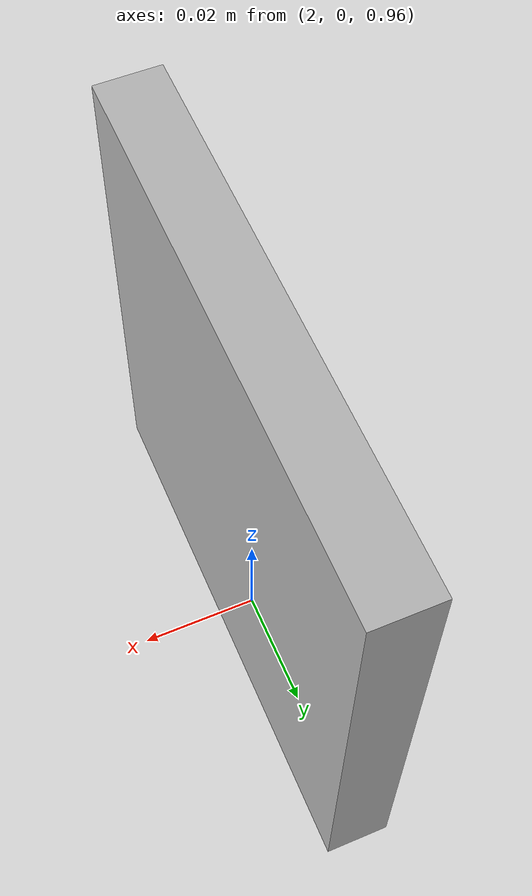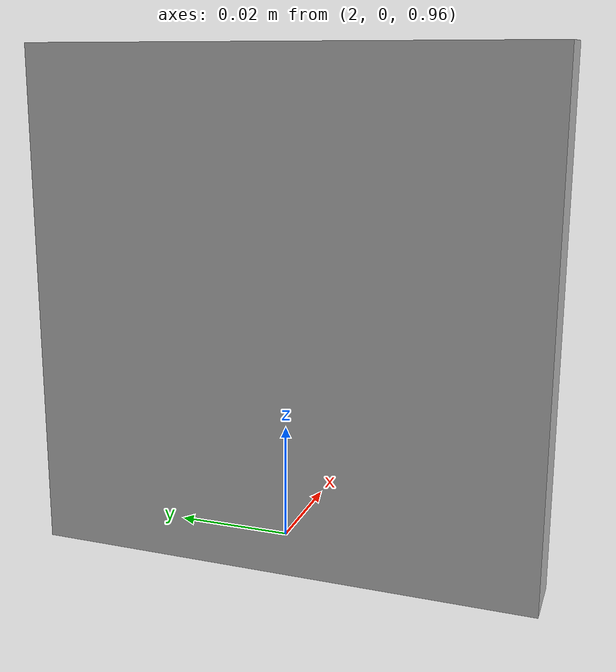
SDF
<sdf version="1.6">
 <world name="default">
  <light name="sun" type="directional">
   <pose>0 0 10 0 -0 0</pose>
   <diffuse>0.8 0.8 0.8 1</diffuse>
   <specular>0.2 0.2 0.2 1</specular>
   <attenuation>
    <range>1000</range>
    <constant>0.9</constant>
    <linear>0.01</linear>
    <quadratic>0.001</quadratic>
   </attenuation>
   <direction>-0.5 0.1 -0.9</direction>
  </light>
  <model name="ground_plane">
   <static>1</static>
   <link name="link">
    <collision name="collision">
     <geometry><plane><normal>0 0 1</normal><size>100 100</size></plane></geometry>
     <surface>
      <contact><collide_bitmask>65535</collide_bitmask></contact>
      <friction><ode><mu>100</mu><mu2>50</mu2></ode></friction>
     </surface>
    </collision>
    <visual name="visual">
     <cast_shadows>0</cast_shadows>
     <geometry><plane><normal>0 0 1</normal><size>100 100</size></plane></geometry>
     <material>
      <script><uri>file://media/materials/scripts/gazebo.material</uri><name>Gazebo/Grey</name></script>
     </material>
    </visual>
   </link>
  </model>
  <gravity>0 0 -9.8</gravity>
  <magnetic_field>6e-06 2.3e-05 -4.2e-05</magnetic_field>
  <atmosphere type="adiabatic"/>
  <physics name="default_physics" default="0" type="ode">
   <max_step_size>0.001</max_step_size>
   <real_time_factor>1</real_time_factor>
   <real_time_update_rate>1000</real_time_update_rate>
  </physics>
  <scene><ambient>0.4 0.4 0.4 1</ambient><background>0.7 0.7 0.7 1</background><shadows>1</shadows></scene>
  <spherical_coordinates>
   <surface_model>EARTH_WGS84</surface_model>
   <latitude_deg>0</latitude_deg>
   <longitude_deg>0</longitude_deg>
   <elevation>0</elevation>
   <heading_deg>0</heading_deg>
  </spherical_coordinates>
  <model name="ar_2020">
   <link name="base_footprint">
    <inertial>
     <mass>1</mass>
     <inertia>
      <ixx>0.0741667</ixx>
      <ixy>0</ixy>
      <ixz>0</ixz>
      <iyy>0.0585417</iyy>
      <iyz>0</iyz>
      <izz>0.0260417</izz>
     </inertia>
    </inertial>
    <collision name="base_footprint_fixed_joint_lump__simple_box_base_link_collision">
     <geometry><box><size>0.2 0.2 0.2</size></box></geometry>
     <surface>
      <contact><ode><kp>100000</kp><kd>100000</kd></ode></contact>
      <friction><ode><mu>0.1</mu><mu2>0.1</mu2><fdir1>1 0 0</fdir1></ode></friction>
     </surface>
    </collision>
    <visual name="base_footprint_visual"><geometry><box><size>0.001 0.001 0.001</size></box></geometry></visual>
    <visual name="base_footprint_fixed_joint_lump__simple_box_base_link_visual_1">
     <geometry>
      <mesh><scale>1 1 1</scale><uri>/home/houman/bebop_ws/src/sjtu-drone/meshes/ar_2020_v2.dae</uri></mesh>
     </geometry>
     <material><script><uri>__default__</uri><name>__default__</name></script></material>
    </visual>
    <gravity>0</gravity>
   </link>
   <static>0</static>
   <plugin name="object_controller" filename="libgazebo_ros_planar_move.so">
    <commandTopic>ar_tag/cmd_vel</commandTopic>
    <odometryTopic>odom</odometryTopic>
    <odometryFrame>odom</odometryFrame>
    <odometryRate>20.0</odometryRate>
    <robotBaseFrame>base_footprint</robotBaseFrame>
    <robotNamespace>/</robotNamespace>
   </plugin>
   <pose>2 0 1 1.57 -0 1.57</pose>
  </model>
 </world>
</sdf>
